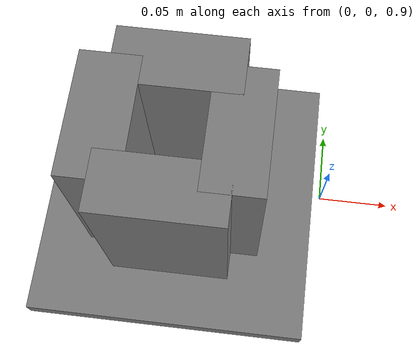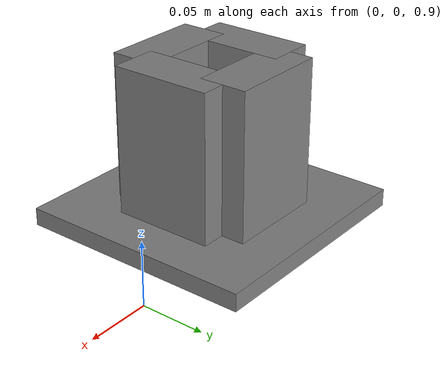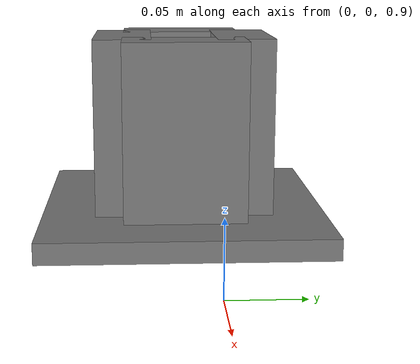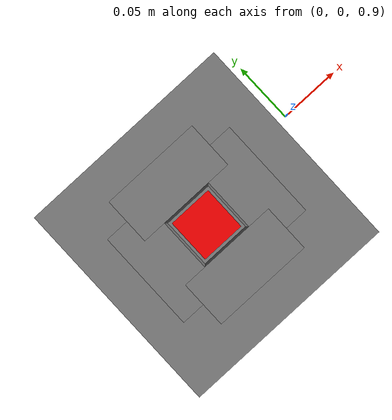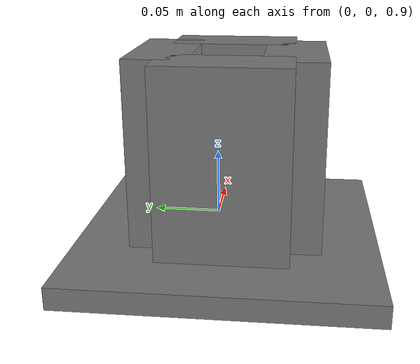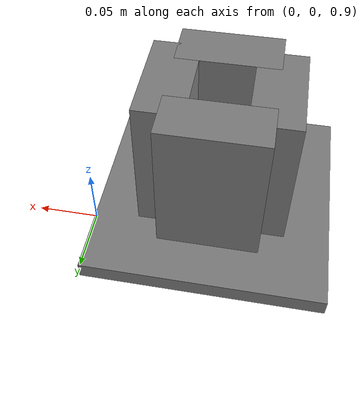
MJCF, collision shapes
<mujoco model="industreal_tray_insert_round_peg_8mm__inst_b">
  <!-- formal asset; XY scaled from official 8mm; Z layout preserved (site above base) -->
  <asset>
    <mesh name="industreal_tray_insert_round_peg_8mm__inst_b_mesh"
          file="./industreal/mesh/industreal_pegs/industreal_tray_insert_round_peg_8mm.obj"
          scale="4.5 4.5 4.5" />
    <material name="industreal_tray_insert_round_peg_8mm__inst_b_mat"
              rgba="0.22 0.28 0.34 1"
              specular="0.85"
              shininess="0.75" />
  </asset>

  <worldbody>
    <body name="industreal_tray_insert_round_peg_8mm__inst_b" pos="-0.1 -0.02 0.92">
      <freejoint name="industreal_tray_insert_round_peg_8mm__inst_b_joint" />

      <geom name="industreal_tray_insert_round_peg_8mm__inst_b_visual"
            type="mesh"
            mesh="industreal_tray_insert_round_peg_8mm__inst_b_mesh"
            material="industreal_tray_insert_round_peg_8mm__inst_b_mat"
            contype="0"
            conaffinity="0"
            density="0"
            group="1" />

      <geom name="industreal_tray_insert_round_peg_8mm__inst_b_base"
            type="box"
            pos="0 0 0.00675"
            size="0.091125 0.091125 0.00675"
            friction="0.8 0.02 0.002"
            solref="0.0015 1.0"
            solimp="0.995 0.999 0.0001"
            density="100"
            mass="0.01"
            group="3" />

      <geom name="industreal_tray_insert_round_peg_8mm__inst_b_wall_pos_y"
            type="box"
            pos="0 0.038728 0.06975"
            size="0.038728 0.018225 0.05625"
            friction="0.8 0.02 0.002"
            solref="0.0015 1.0"
            solimp="0.995 0.999 0.0001"
            density="100"
            mass="0.01"
            group="3" />
      <geom name="industreal_tray_insert_round_peg_8mm__inst_b_wall_neg_y"
            type="box"
            pos="0 -0.038728 0.06975"
            size="0.038728 0.018225 0.05625"
            friction="0.8 0.02 0.002"
            solref="0.0015 1.0"
            solimp="0.995 0.999 0.0001"
            density="100"
            mass="0.01"
            group="3" />
      <geom name="industreal_tray_insert_round_peg_8mm__inst_b_wall_pos_x"
            type="box"
            pos="0.038728 0 0.06975"
            size="0.018225 0.038728 0.05625"
            friction="0.8 0.02 0.002"
            solref="0.0015 1.0"
            solimp="0.995 0.999 0.0001"
            density="100"
            mass="0.01"
            group="3" />
      <geom name="industreal_tray_insert_round_peg_8mm__inst_b_wall_neg_x"
            type="box"
            pos="-0.038728 0 0.06975"
            size="0.018225 0.038728 0.05625"
            friction="0.8 0.02 0.002"
            solref="0.0015 1.0"
            solimp="0.995 0.999 0.0001"
            density="100"
            mass="0.01"
            group="3" />

      <geom name="industreal_tray_insert_round_peg_8mm__inst_b_bottom_contact"
            type="box"
            pos="0 0 0.0145"
            size="0.018225 0.018225 0.001"
            friction="0.8 0.02 0.002"
            solref="0.0015 1.0"
            solimp="0.995 0.999 0.0001"
            density="100"
            mass="0.01"
            rgba="1 0 0 1"
            group="3" />

      <site name="industreal_tray_insert_round_peg_8mm__inst_b_socket_site"
            pos="0 0 0.027"
            size="0.006 0.006 0.006"
            rgba="0 0 1 0" />
    </body>
  </worldbody>
</mujoco>
